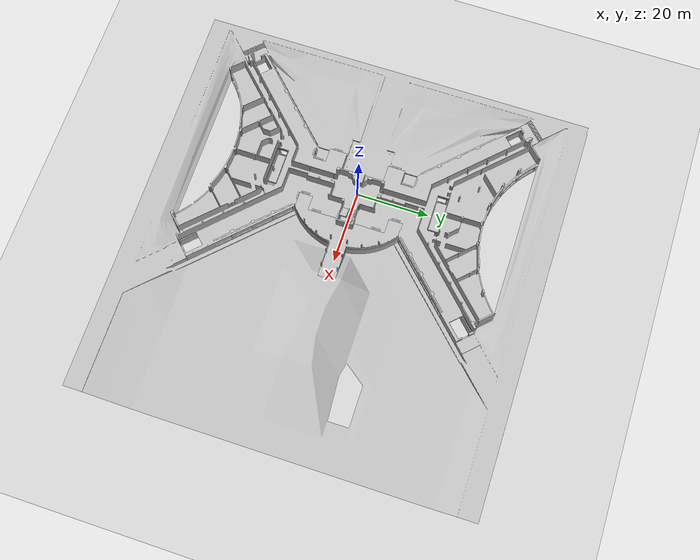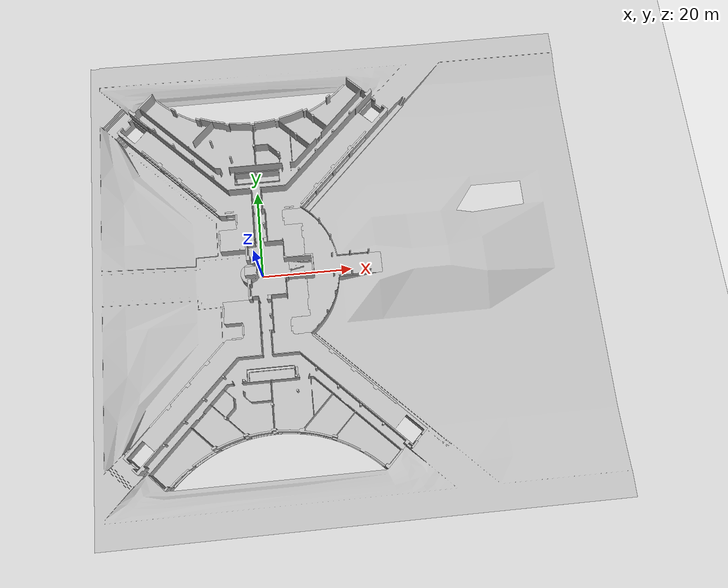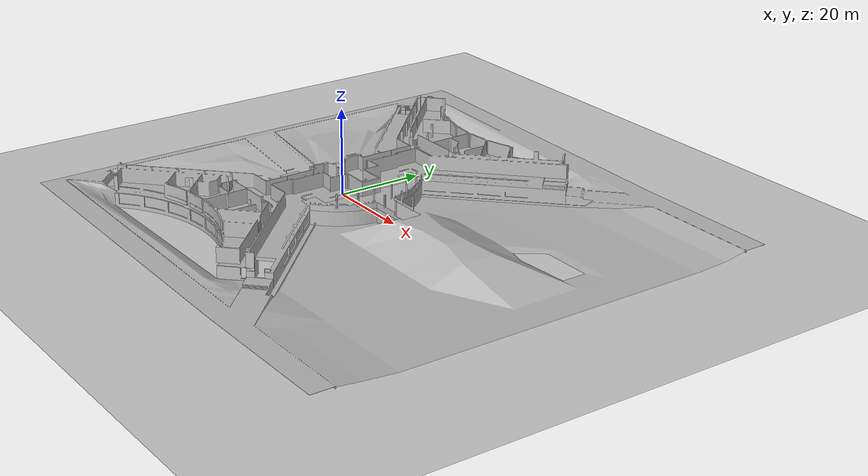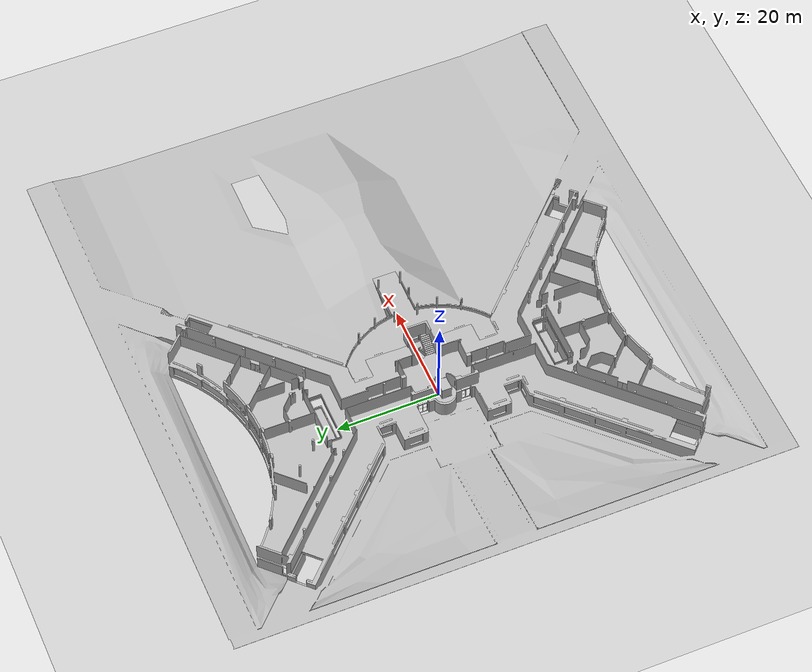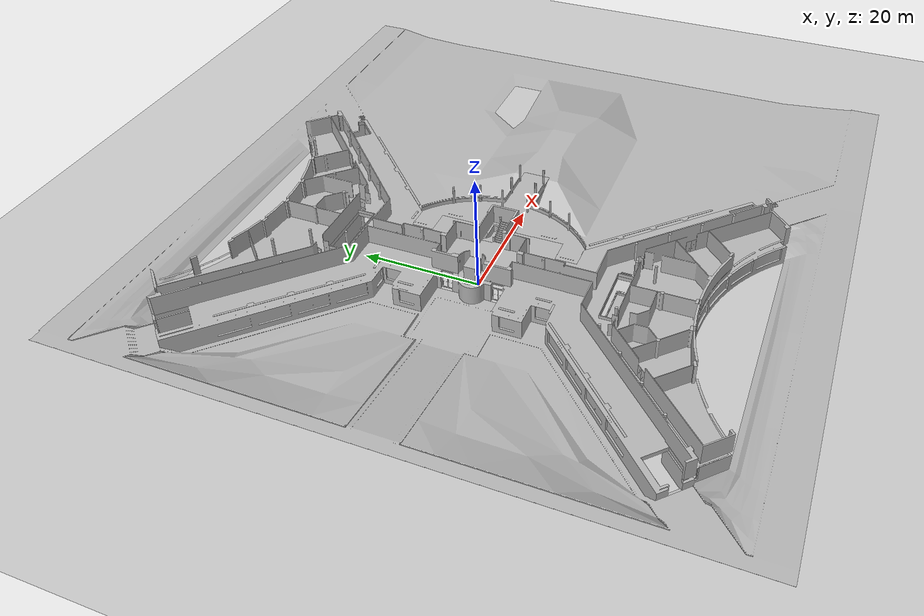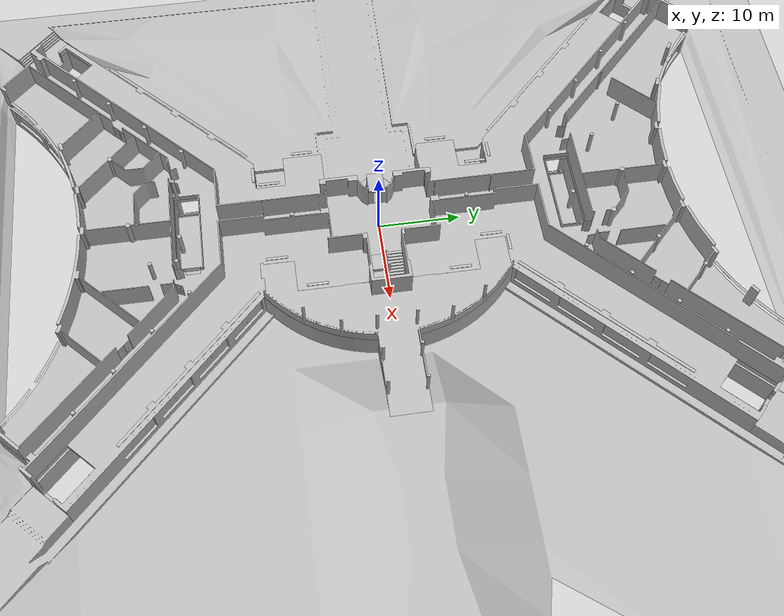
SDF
<sdf version='1.10'>
  <world name='TIbuilding'>
    <physics name='1ms' type='ignored'>
      <max_step_size>0.001</max_step_size>
      <real_time_factor>1</real_time_factor>
      <real_time_update_rate>1000</real_time_update_rate>
    </physics>
    <plugin name='gz::sim::systems::Physics' filename='gz-sim-physics-system'/>
    <plugin name='gz::sim::systems::UserCommands' filename='gz-sim-user-commands-system'/>
    <plugin name='gz::sim::systems::SceneBroadcaster' filename='gz-sim-scene-broadcaster-system'/>
    <plugin name='gz::sim::systems::Contact' filename='gz-sim-contact-system'/>
    <plugin name='gz::sim::systems::Sensors' filename='gz-sim-sensors-system'>
      <render_engine>ogre2</render_engine>
    </plugin>
    <gravity>0 0 -9.8000000000000007</gravity>
    <magnetic_field>5.5644999999999998e-06 2.2875799999999999e-05 -4.2388400000000002e-05</magnetic_field>
    <atmosphere type='adiabatic'/>
    <scene>
      <ambient>0.400000006 0.400000006 0.400000006 1</ambient>
      <background>0.699999988 0.699999988 0.699999988 1</background>
      <shadows>true</shadows>
    </scene>
    <model name='ground_plane'>
      <static>true</static>
      <link name='link'>
        <collision name='collision'>
          <geometry>
            <plane>
              <normal>0 0 1</normal>
              <size>100 100</size>
            </plane>
          </geometry>
          <surface>
            <friction>
              <ode/>
            </friction>
            <bounce/>
            <contact/>
          </surface>
        </collision>
        <visual name='visual'>
          <geometry>
            <plane>
              <normal>0 0 1</normal>
              <size>100 100</size>
            </plane>
          </geometry>
          <material>
            <ambient>0.800000012 0.800000012 0.800000012 1</ambient>
            <diffuse>0.800000012 0.800000012 0.800000012 1</diffuse>
            <specular>0.800000012 0.800000012 0.800000012 1</specular>
          </material>
        </visual>
        <pose>0 0 -1 0 0 0</pose>
        <inertial>
          <pose>0 0 0 0 0 0</pose>
          <mass>1</mass>
          <inertia>
            <ixx>1</ixx>
            <ixy>0</ixy>
            <ixz>0</ixz>
            <iyy>1</iyy>
            <iyz>0</iyz>
            <izz>1</izz>
          </inertia>
        </inertial>
        <enable_wind>false</enable_wind>
      </link>
      <pose>0 0 0 0 0 0</pose>
      <self_collide>false</self_collide>
    </model>
    <model name='GroundP1'>
      <link name='link'>
        <visual name='visual'>
          <geometry>
            <mesh>
              <uri>./meshes/GroundP1.dae</uri>
            </mesh>
          </geometry>
        </visual>
        <collision name='collision'>
          <geometry>
            <mesh>
              <uri>./meshes/collisions/GroundCollisionP1.dae</uri>
            </mesh>
          </geometry>
        </collision>
        <pose>0 0 0 0 0 0</pose>
        <inertial>
          <pose>0 0 0 0 0 0</pose>
          <mass>1</mass>
          <inertia>
            <ixx>1</ixx>
            <ixy>0</ixy>
            <ixz>0</ixz>
            <iyy>1</iyy>
            <iyz>0</iyz>
            <izz>1</izz>
          </inertia>
        </inertial>
        <enable_wind>false</enable_wind>
      </link>
      <pose>-22 -45 0 0 0 0</pose>
      <static>true</static>
      <self_collide>false</self_collide>
    </model>
    <model name='PorchP1'>
      <link name='link'>
        <visual name='visual'>
          <geometry>
            <mesh>
              <uri>./meshes/PorchP1.dae</uri>
            </mesh>
          </geometry>
        </visual>
        <collision name='collision'>
          <geometry>
            <mesh>
              <uri>./meshes/PorchP1.dae</uri>
            </mesh>
          </geometry>
        </collision>
        <pose>0 0 0 0 0 0</pose>
        <inertial>
          <pose>0 0 0 0 0 0</pose>
          <mass>1</mass>
          <inertia>
            <ixx>1</ixx>
            <ixy>0</ixy>
            <ixz>0</ixz>
            <iyy>1</iyy>
            <iyz>0</iyz>
            <izz>1</izz>
          </inertia>
        </inertial>
        <enable_wind>false</enable_wind>
      </link>
      <pose>-22 -45 0 0 0 0</pose>
      <static>true</static>
      <self_collide>false</self_collide>
    </model>
    <model name='WallsP1'>
      <link name='link'>
        <visual name='visual'>
          <geometry>
            <mesh>
              <uri>./meshes/WallsP1.dae</uri>
            </mesh>
          </geometry>
        </visual>
        <collision name='collision'>
          <geometry>
            <mesh>
              <uri>./meshes/collisions/WallsCollisionP1.dae</uri>
            </mesh>
          </geometry>
        </collision>
        <pose>0 0 0 0 0 0</pose>
        <inertial>
          <pose>0 0 0 0 0 0</pose>
          <mass>1</mass>
          <inertia>
            <ixx>1</ixx>
            <ixy>0</ixy>
            <ixz>0</ixz>
            <iyy>1</iyy>
            <iyz>0</iyz>
            <izz>1</izz>
          </inertia>
        </inertial>
        <enable_wind>false</enable_wind>
      </link>
      <pose>-22 -45 0 0 0 0</pose>
      <static>true</static>
      <self_collide>false</self_collide>
    </model>
    <model name='StairsP1'>
      <link name='link'>
        <visual name='visual'>
          <geometry>
            <mesh>
              <uri>./meshes/StairsP1.dae</uri>
            </mesh>
          </geometry>
        </visual>
        <collision name='collision'>
          <geometry>
            <mesh>
              <uri>./meshes/StairsP1.dae</uri>
            </mesh>
          </geometry>
        </collision>
        <pose>0 0 0 0 0 0</pose>
        <inertial>
          <pose>0 0 0 0 0 0</pose>
          <mass>1</mass>
          <inertia>
            <ixx>1</ixx>
            <ixy>0</ixy>
            <ixz>0</ixz>
            <iyy>1</iyy>
            <iyz>0</iyz>
            <izz>1</izz>
          </inertia>
        </inertial>
        <enable_wind>false</enable_wind>
      </link>
      <pose>-22 -45 0 0 0 0</pose>
      <static>true</static>
      <self_collide>false</self_collide>
    </model>
    <model name='Elevator'>
      <link name='link'>
        <visual name='visual'>
          <geometry>
            <mesh>
              <uri>./meshes/Elevator.dae</uri>
            </mesh>
          </geometry>
        </visual>
        <collision name='collision'>
          <geometry>
            <mesh>
              <uri>./meshes/Elevator.dae</uri>
            </mesh>
          </geometry>
        </collision>
        <pose>0 0 0 0 0 0</pose>
        <inertial>
          <pose>0 0 0 0 0 0</pose>
          <mass>1</mass>
          <inertia>
            <ixx>1</ixx>
            <ixy>0</ixy>
            <ixz>0</ixz>
            <iyy>1</iyy>
            <iyz>0</iyz>
            <izz>1</izz>
          </inertia>
        </inertial>
        <enable_wind>false</enable_wind>
      </link>
      <pose>-21.91 -45 0 0 0 0</pose>
      <static>true</static>
      <self_collide>false</self_collide>
    </model>
    <model name='WallsPB'>
      <link name='link'>
        <visual name='visual'>
          <geometry>
            <mesh>
              <uri>./meshes/WallsPB.dae</uri>
            </mesh>
          </geometry>
        </visual>
        <collision name='collision'>
          <geometry>
            <mesh>
              <uri>./meshes/WallsPB.dae</uri>
            </mesh>
          </geometry>
        </collision>
        <pose>0 0 0 0 0 0</pose>
        <inertial>
          <pose>0 0 0 0 0 0</pose>
          <mass>1</mass>
          <inertia>
            <ixx>1</ixx>
            <ixy>0</ixy>
            <ixz>0</ixz>
            <iyy>1</iyy>
            <iyz>0</iyz>
            <izz>1</izz>
          </inertia>
        </inertial>
        <enable_wind>false</enable_wind>
      </link>
      <pose>-22 -45 0 0 0 0</pose>
      <static>true</static>
      <self_collide>false</self_collide>
    </model>
    <model name='LabDoorRight'>
      <link name='link'>
        <visual name='visual'>
          <geometry>
            <mesh>
              <uri>./meshes/LabDoorRight.dae</uri>
            </mesh>
          </geometry>
        </visual>
        <collision name='collision'>
          <geometry>
            <mesh>
              <uri>./meshes/LabDoorRight.dae</uri>
            </mesh>
          </geometry>
        </collision>
        <pose>0 0 0 0 0 0</pose>
        <inertial>
          <pose>0 0 0 0 0 0</pose>
          <mass>1</mass>
          <inertia>
            <ixx>1</ixx>
            <ixy>0</ixy>
            <ixz>0</ixz>
            <iyy>1</iyy>
            <iyz>0</iyz>
            <izz>1</izz>
          </inertia>
        </inertial>
        <enable_wind>false</enable_wind>
      </link>
      <pose>-7.3000001907348633 -24.2593994140625 4 0 0 1.9777001551464033</pose>
      <static>true</static>
      <self_collide>false</self_collide>
    </model>
    <model name='LabDoorLeft'>
      <link name='link'>
        <visual name='visual'>
          <geometry>
            <mesh>
              <uri>./meshes/LabDoorLeft.dae</uri>
            </mesh>
          </geometry>
        </visual>
        <collision name='collision'>
          <geometry>
            <mesh>
              <uri>./meshes/LabDoorLeft.dae</uri>
            </mesh>
          </geometry>
        </collision>
        <pose>0 0 0 0 0 0</pose>
        <inertial>
          <pose>0 0 0 0 0 0</pose>
          <mass>1</mass>
          <inertia>
            <ixx>1</ixx>
            <ixy>0</ixy>
            <ixz>0</ixz>
            <iyy>1</iyy>
            <iyz>0</iyz>
            <izz>1</izz>
          </inertia>
        </inertial>
        <enable_wind>false</enable_wind>
      </link>
      <pose>-5.5008502006530762 -24.259399414062504 4 0 0 -1.6946655886397042</pose>
      <static>true</static>
      <self_collide>false</self_collide>
    </model>
    <model name='LabDoorLeft_01'>
      <link name='link'>
        <visual name='visual'>
          <geometry>
            <mesh>
              <uri>./meshes/LabDoorLeft.dae</uri>
            </mesh>
          </geometry>
        </visual>
        <collision name='collision'>
          <geometry>
            <mesh>
              <uri>./meshes/LabDoorLeft.dae</uri>
            </mesh>
          </geometry>
        </collision>
        <pose>0 0 0 0 0 0</pose>
        <inertial>
          <pose>0 0 0 0 0 0</pose>
          <mass>1</mass>
          <inertia>
            <ixx>1</ixx>
            <ixy>0</ixy>
            <ixz>0</ixz>
            <iyy>1</iyy>
            <iyz>0</iyz>
            <izz>1</izz>
          </inertia>
        </inertial>
        <enable_wind>false</enable_wind>
      </link>
      <pose>8.3232870101928693 -24.253730773925778 4 0 0 -2.0334698052796125</pose>
      <static>true</static>
      <self_collide>false</self_collide>
    </model>
    <model name='LabDoorRight_01'>
      <link name='link'>
        <visual name='visual'>
          <geometry>
            <mesh>
              <uri>./meshes/LabDoorRight.dae</uri>
            </mesh>
          </geometry>
        </visual>
        <collision name='collision'>
          <geometry>
            <mesh>
              <uri>./meshes/LabDoorRight.dae</uri>
            </mesh>
          </geometry>
        </collision>
        <pose>0 0 0 0 0 0</pose>
        <inertial>
          <pose>0 0 0 0 0 0</pose>
          <mass>1</mass>
          <inertia>
            <ixx>1</ixx>
            <ixy>0</ixy>
            <ixz>0</ixz>
            <iyy>1</iyy>
            <iyz>0</iyz>
            <izz>1</izz>
          </inertia>
        </inertial>
        <enable_wind>false</enable_wind>
      </link>
      <pose>6.518010139465332 -24.259399414062496 4 0 0 1.748327286818226</pose>
      <static>true</static>
      <self_collide>false</self_collide>
    </model>
    <model name='LabDoorLeft_02'>
      <link name='link'>
        <visual name='visual'>
          <geometry>
            <mesh>
              <uri>./meshes/LabDoorLeft.dae</uri>
            </mesh>
          </geometry>
        </visual>
        <collision name='collision'>
          <geometry>
            <mesh>
              <uri>./meshes/LabDoorLeft.dae</uri>
            </mesh>
          </geometry>
        </collision>
        <pose>0 0 0 0 0 0</pose>
        <inertial>
          <pose>0 0 0 0 0 0</pose>
          <mass>1</mass>
          <inertia>
            <ixx>1</ixx>
            <ixy>0</ixy>
            <ixz>0</ixz>
            <iyy>1</iyy>
            <iyz>0</iyz>
            <izz>1</izz>
          </inertia>
        </inertial>
        <enable_wind>false</enable_wind>
      </link>
      <pose>-13.734 -29.545999999999999 4 0 0 0.7854000000000001</pose>
      <static>true</static>
      <self_collide>false</self_collide>
    </model>
    <model name='LabDoorRight_02'>
      <link name='link'>
        <visual name='visual'>
          <geometry>
            <mesh>
              <uri>./meshes/LabDoorRight.dae</uri>
            </mesh>
          </geometry>
        </visual>
        <collision name='collision'>
          <geometry>
            <mesh>
              <uri>./meshes/LabDoorRight.dae</uri>
            </mesh>
          </geometry>
        </collision>
        <pose>0 0 0 0 0 0</pose>
        <inertial>
          <pose>0 0 0 0 0 0</pose>
          <mass>1</mass>
          <inertia>
            <ixx>1</ixx>
            <ixy>0</ixy>
            <ixz>0</ixz>
            <iyy>1</iyy>
            <iyz>0</iyz>
            <izz>1</izz>
          </inertia>
        </inertial>
        <enable_wind>false</enable_wind>
      </link>
      <pose>-15.006999999999998 -30.818999999999999 4 0 0 0.7854000000000001</pose>
      <static>true</static>
      <self_collide>false</self_collide>
    </model>
    <model name='LabDoorLeft_03'>
      <link name='link'>
        <visual name='visual'>
          <geometry>
            <mesh>
              <uri>./meshes/LabDoorLeft.dae</uri>
            </mesh>
          </geometry>
        </visual>
        <collision name='collision'>
          <geometry>
            <mesh>
              <uri>./meshes/LabDoorLeft.dae</uri>
            </mesh>
          </geometry>
        </collision>
        <pose>0 0 0 0 0 0</pose>
        <inertial>
          <pose>0 0 0 0 0 0</pose>
          <mass>1</mass>
          <inertia>
            <ixx>1</ixx>
            <ixy>0</ixy>
            <ixz>0</ixz>
            <iyy>1</iyy>
            <iyz>0</iyz>
            <izz>1</izz>
          </inertia>
        </inertial>
        <enable_wind>false</enable_wind>
      </link>
      <pose>15.94 -30.784000000000002 4 0 0 -0.7854000000000001</pose>
      <static>true</static>
      <self_collide>false</self_collide>
    </model>
    <model name='LabDoorRight_03'>
      <link name='link'>
        <visual name='visual'>
          <geometry>
            <mesh>
              <uri>./meshes/LabDoorRight.dae</uri>
            </mesh>
          </geometry>
        </visual>
        <collision name='collision'>
          <geometry>
            <mesh>
              <uri>./meshes/LabDoorRight.dae</uri>
            </mesh>
          </geometry>
        </collision>
        <pose>0 0 0 0 0 0</pose>
        <inertial>
          <pose>0 0 0 0 0 0</pose>
          <mass>1</mass>
          <inertia>
            <ixx>1</ixx>
            <ixy>0</ixy>
            <ixz>0</ixz>
            <iyy>1</iyy>
            <iyz>0</iyz>
            <izz>1</izz>
          </inertia>
        </inertial>
        <enable_wind>false</enable_wind>
      </link>
      <pose>14.667999999999999 -29.511000000000003 4 0 0 -0.7854000000000001</pose>
      <static>true</static>
      <self_collide>false</self_collide>
    </model>
    <model name='LabDoorLeft_04'>
      <link name='link'>
        <visual name='visual'>
          <geometry>
            <mesh>
              <uri>./meshes/LabDoorLeft.dae</uri>
            </mesh>
          </geometry>
        </visual>
        <collision name='collision'>
          <geometry>
            <mesh>
              <uri>./meshes/LabDoorLeft.dae</uri>
            </mesh>
          </geometry>
        </collision>
        <pose>0 0 0 0 0 0</pose>
        <inertial>
          <pose>0 0 0 0 0 0</pose>
          <mass>1</mass>
          <inertia>
            <ixx>1</ixx>
            <ixy>0</ixy>
            <ixz>0</ixz>
            <iyy>1</iyy>
            <iyz>0</iyz>
            <izz>1</izz>
          </inertia>
        </inertial>
        <enable_wind>false</enable_wind>
      </link>
      <pose>6.5180001258850098 24.117000579833984 4 0 0 1.3941193897865334</pose>
      <static>true</static>
      <self_collide>false</self_collide>
    </model>
    <model name='LabDoorRight_04'>
      <link name='link'>
        <visual name='visual'>
          <geometry>
            <mesh>
              <uri>./meshes/LabDoorRight.dae</uri>
            </mesh>
          </geometry>
        </visual>
        <collision name='collision'>
          <geometry>
            <mesh>
              <uri>./meshes/LabDoorRight.dae</uri>
            </mesh>
          </geometry>
        </collision>
        <pose>0 0 0 0 0 0</pose>
        <inertial>
          <pose>0 0 0 0 0 0</pose>
          <mass>1</mass>
          <inertia>
            <ixx>1</ixx>
            <ixy>0</ixy>
            <ixz>0</ixz>
            <iyy>1</iyy>
            <iyz>0</iyz>
            <izz>1</izz>
          </inertia>
        </inertial>
        <enable_wind>false</enable_wind>
      </link>
      <pose>8.3179998397827148 24.156000137329105 4 0 0 -1.4906089774544777</pose>
      <static>true</static>
      <self_collide>false</self_collide>
    </model>
    <model name='LabDoorLeft_05'>
      <link name='link'>
        <visual name='visual'>
          <geometry>
            <mesh>
              <uri>./meshes/LabDoorLeft.dae</uri>
            </mesh>
          </geometry>
        </visual>
        <collision name='collision'>
          <geometry>
            <mesh>
              <uri>./meshes/LabDoorLeft.dae</uri>
            </mesh>
          </geometry>
        </collision>
        <pose>0 0 0 0 0 0</pose>
        <inertial>
          <pose>0 0 0 0 0 0</pose>
          <mass>1</mass>
          <inertia>
            <ixx>1</ixx>
            <ixy>0</ixy>
            <ixz>0</ixz>
            <iyy>1</iyy>
            <iyz>0</iyz>
            <izz>1</izz>
          </inertia>
        </inertial>
        <enable_wind>false</enable_wind>
      </link>
      <pose>-7.2989997863769567 24.118999481201172 4 0 0 1.2353506685148907</pose>
      <static>true</static>
      <self_collide>false</self_collide>
    </model>
    <model name='LabDoorRight_05'>
      <link name='link'>
        <visual name='visual'>
          <geometry>
            <mesh>
              <uri>./meshes/LabDoorRight.dae</uri>
            </mesh>
          </geometry>
        </visual>
        <collision name='collision'>
          <geometry>
            <mesh>
              <uri>./meshes/LabDoorRight.dae</uri>
            </mesh>
          </geometry>
        </collision>
        <pose>0 0 0 0 0 0</pose>
        <inertial>
          <pose>0 0 0 0 0 0</pose>
          <mass>1</mass>
          <inertia>
            <ixx>1</ixx>
            <ixy>0</ixy>
            <ixz>0</ixz>
            <iyy>1</iyy>
            <iyz>0</iyz>
            <izz>1</izz>
          </inertia>
        </inertial>
        <enable_wind>false</enable_wind>
      </link>
      <pose>-5.5 24.156000137329105 4 0 0 -1.4768044750288782</pose>
      <static>true</static>
      <self_collide>false</self_collide>
    </model>
    <model name='LabDoorLeft_06'>
      <link name='link'>
        <visual name='visual'>
          <geometry>
            <mesh>
              <uri>./meshes/LabDoorLeft.dae</uri>
            </mesh>
          </geometry>
        </visual>
        <collision name='collision'>
          <geometry>
            <mesh>
              <uri>./meshes/LabDoorLeft.dae</uri>
            </mesh>
          </geometry>
        </collision>
        <pose>0 0 0 0 0 0</pose>
        <inertial>
          <pose>0 0 0 0 0 0</pose>
          <mass>1</mass>
          <inertia>
            <ixx>1</ixx>
            <ixy>0</ixy>
            <ixz>0</ixz>
            <iyy>1</iyy>
            <iyz>0</iyz>
            <izz>1</izz>
          </inertia>
        </inertial>
        <enable_wind>false</enable_wind>
      </link>
      <pose>14.699999809265137 29.408000946044922 4 0 0 -2.357247605219043</pose>
      <static>true</static>
      <self_collide>false</self_collide>
    </model>
    <model name='LabDoorRight_06'>
      <link name='link'>
        <visual name='visual'>
          <geometry>
            <mesh>
              <uri>./meshes/LabDoorRight.dae</uri>
            </mesh>
          </geometry>
        </visual>
        <collision name='collision'>
          <geometry>
            <mesh>
              <uri>./meshes/LabDoorRight.dae</uri>
            </mesh>
          </geometry>
        </collision>
        <pose>0 0 0 0 0 0</pose>
        <inertial>
          <pose>0 0 0 0 0 0</pose>
          <mass>1</mass>
          <inertia>
            <ixx>1</ixx>
            <ixy>0</ixy>
            <ixz>0</ixz>
            <iyy>1</iyy>
            <iyz>0</iyz>
            <izz>1</izz>
          </inertia>
        </inertial>
        <enable_wind>false</enable_wind>
      </link>
      <pose>15.97200012207032 30.680999755859375 4 0 0 -2.3566253486507671</pose>
      <static>true</static>
      <self_collide>false</self_collide>
    </model>
    <model name='StairsPB'>
      <link name='link'>
        <visual name='visual'>
          <geometry>
            <mesh>
              <uri>./meshes/StairsPB.dae</uri>
            </mesh>
          </geometry>
        </visual>
        <collision name='collision'>
          <geometry>
            <mesh>
              <uri>./meshes/StairsPB.dae</uri>
            </mesh>
          </geometry>
        </collision>
        <pose>0 0 0 0 0 0</pose>
        <inertial>
          <pose>0 0 0 0 0 0</pose>
          <mass>1</mass>
          <inertia>
            <ixx>1</ixx>
            <ixy>0</ixy>
            <ixz>0</ixz>
            <iyy>1</iyy>
            <iyz>0</iyz>
            <izz>1</izz>
          </inertia>
        </inertial>
        <enable_wind>false</enable_wind>
      </link>
      <pose>-22 -45 0 0 0 0</pose>
      <static>true</static>
      <self_collide>false</self_collide>
    </model>
    <model name='Ground'>
      <link name='link'>
        <visual name='visual'>
          <geometry>
            <mesh>
              <uri>./meshes/Ground.dae</uri>
            </mesh>
          </geometry>
        </visual>
        <collision name='collision'>
          <geometry>
            <mesh>
              <uri>./meshes/Ground.dae</uri>
            </mesh>
          </geometry>
        </collision>
        <pose>0 0 0 0 0 0</pose>
        <inertial>
          <pose>0 0 0 0 0 0</pose>
          <mass>1</mass>
          <inertia>
            <ixx>1</ixx>
            <ixy>0</ixy>
            <ixz>0</ixz>
            <iyy>1</iyy>
            <iyz>0</iyz>
            <izz>1</izz>
          </inertia>
        </inertial>
        <enable_wind>false</enable_wind>
      </link>
      <pose>-22 -45 0 0 0 0</pose>
      <static>true</static>
      <self_collide>false</self_collide>
    </model>
    <model name='Banc'>
      <link name='link'>
        <visual name='visual'>
          <geometry>
            <mesh>
              <uri>./meshes/Banc.dae</uri>
            </mesh>
          </geometry>
        </visual>
        <collision name='collision'>
          <geometry>
            <mesh>
              <uri>./meshes/Banc.dae</uri>
            </mesh>
          </geometry>
        </collision>
        <pose>0 0 0 0 0 0</pose>
        <inertial>
          <pose>0 0 0 0 0 0</pose>
          <mass>1</mass>
          <inertia>
            <ixx>1</ixx>
            <ixy>0</ixy>
            <ixz>0</ixz>
            <iyy>1</iyy>
            <iyz>0</iyz>
            <izz>1</izz>
          </inertia>
        </inertial>
        <enable_wind>false</enable_wind>
      </link>
      <pose>5.9299999999999997 -22.350000000000001 4 0 0 0</pose>
      <static>true</static>
      <self_collide>false</self_collide>
    </model>
    <light name='sun' type='directional'>
      <pose>0 0 10 0 0 0</pose>
      <cast_shadows>true</cast_shadows>
      <intensity>1</intensity>
      <direction>-0.5 0.10000000000000001 -0.90000000000000002</direction>
      <diffuse>0.800000012 0.800000012 0.800000012 1</diffuse>
      <specular>0.200000003 0.200000003 0.200000003 1</specular>
      <attenuation>
        <range>1000</range>
        <linear>0.01</linear>
        <constant>0.90000000000000002</constant>
        <quadratic>0.001</quadratic>
      </attenuation>
      <spot>
        <inner_angle>0</inner_angle>
        <outer_angle>0</outer_angle>
        <falloff>0</falloff>
      </spot>
    </light>
  </world>
</sdf>
